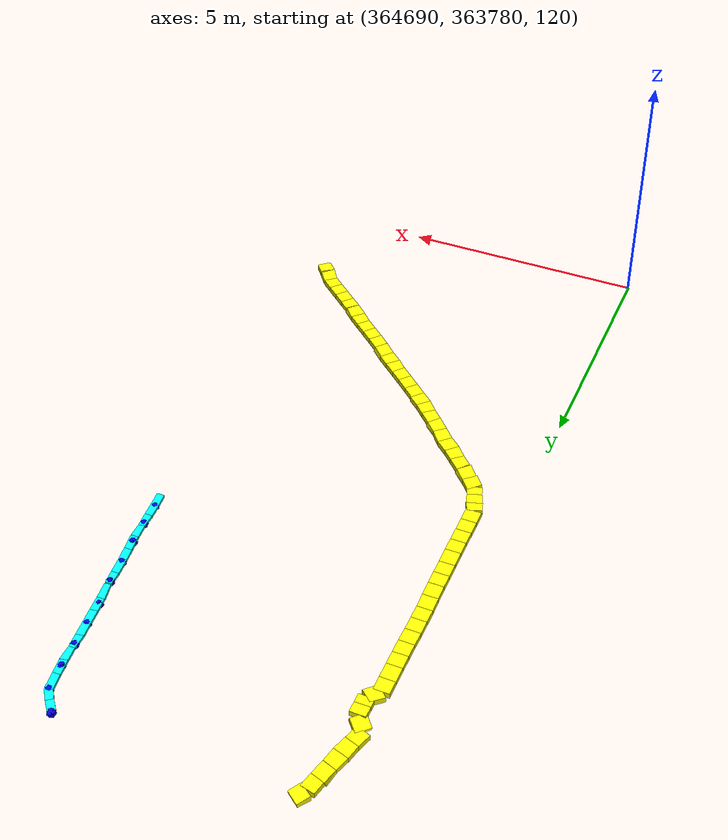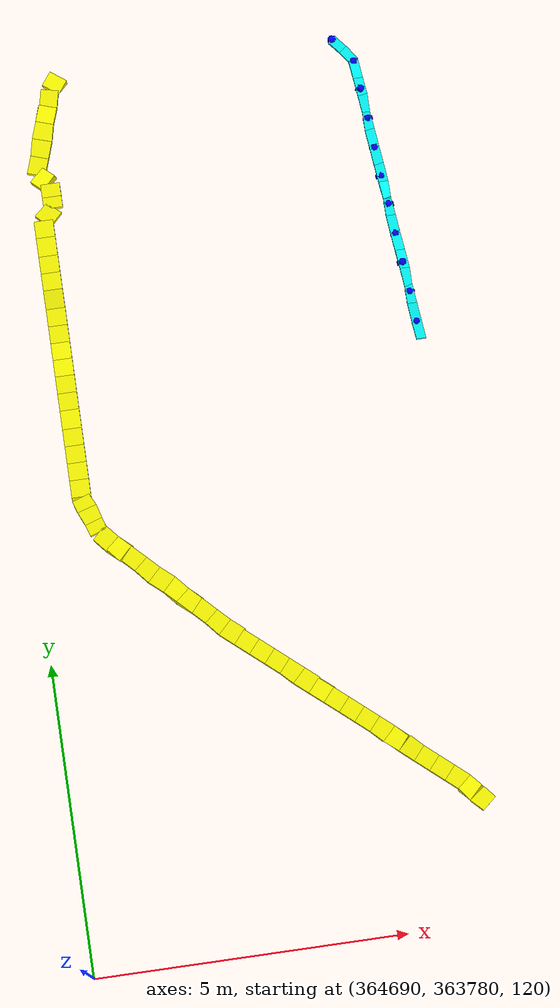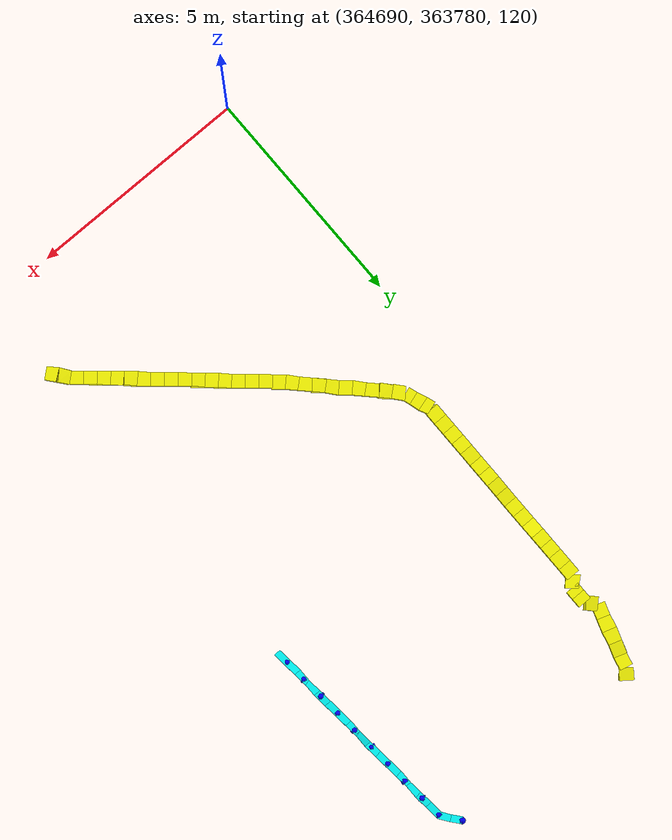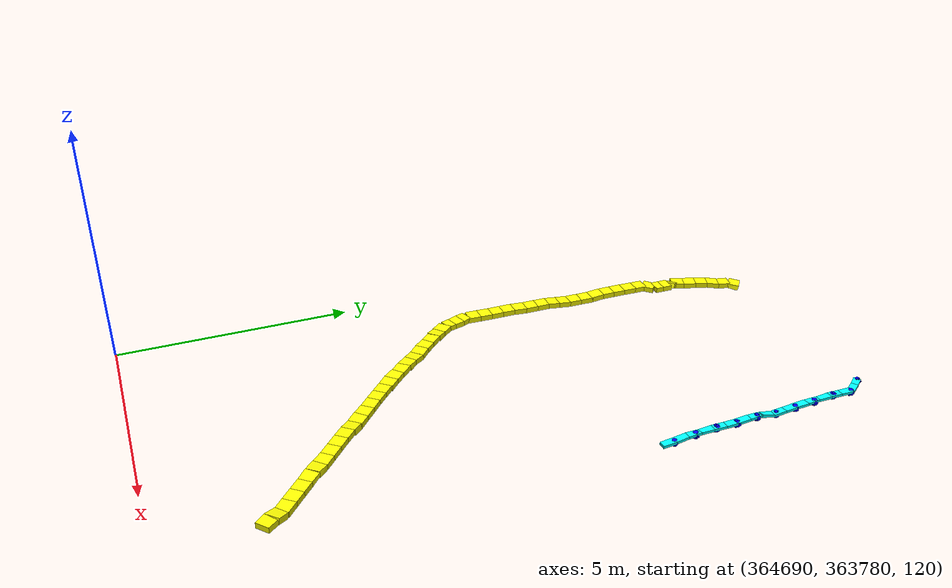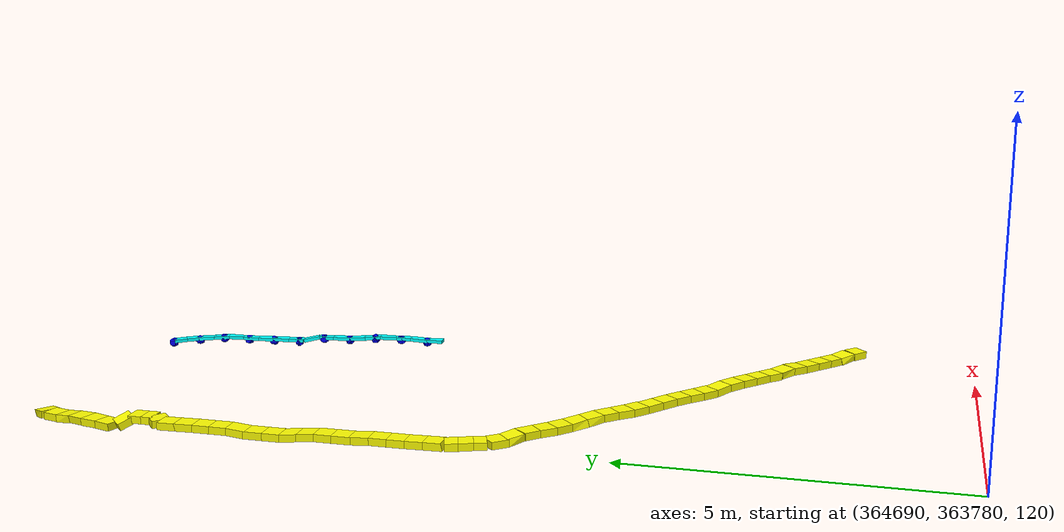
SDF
<sdf version="1.5">
 <world name="default">
  <include><uri>model://sun</uri></include>
  <model name="road_segment_32">
   <static>true</static>
   <pose>364696.49 363781.93999999994 119.97499999990542 0 0.03839219072589787 2.2655346028484664</pose>
   <link name="link">
    <collision name="collision">
     <geometry><box><size>0.26053364038696225 0.3 0.12</size></box></geometry>
     <surface><friction><ode><mu>0.2</mu><mu2>0.2</mu2></ode></friction></surface>
    </collision>
    <visual name="visual">
     <geometry><box><size>0.26053364038696225 0.3 0.12</size></box></geometry>
     <material><ambient>1 1 0 1</ambient><diffuse>1 1 0 1</diffuse><emissive>1 1 0 1</emissive></material>
    </visual>
   </link>
  </model>
  <model name="road_segment_33">
   <static>true</static>
   <pose>364696.32333333336 363782.14 119.94499999990542 0 0.1897449038507924 2.2655346030202264</pose>
   <link name="link">
    <collision name="collision">
     <geometry><box><size>0.26509956199508167 0.3 0.12</size></box></geometry>
     <surface><friction><ode><mu>0.02</mu><mu2>0.02</mu2></ode></friction></surface>
    </collision>
    <visual name="visual">
     <geometry><box><size>0.26509956199508167 0.3 0.12</size></box></geometry>
     <material><ambient>1 1 0 1</ambient><diffuse>1 1 0 1</diffuse><emissive>1 1 0 1</emissive></material>
    </visual>
   </link>
  </model>
  <model name="road_segment_34">
   <static>true</static>
   <pose>364696.1333333333 363782.3333333333 119.92 0 -0.0 2.4227626539874856</pose>
   <link name="link">
    <collision name="collision">
     <geometry><box><size>0.2834705549818721 0.3 0.12</size></box></geometry>
     <surface><friction><ode><mu>0.02</mu><mu2>0.02</mu2></ode></friction></surface>
    </collision>
    <visual name="visual">
     <geometry><box><size>0.2834705549818721 0.3 0.12</size></box></geometry>
     <material><ambient>1 1 0 1</ambient><diffuse>1 1 0 1</diffuse><emissive>1 1 0 1</emissive></material>
    </visual>
   </link>
  </model>
  <model name="road_segment_35">
   <static>true</static>
   <pose>364695.92 363782.52 119.92 0 -0.0 2.4227626539681686</pose>
   <link name="link">
    <collision name="collision">
     <geometry><box><size>0.28347055506400787 0.3 0.12</size></box></geometry>
     <surface><friction><ode><mu>0.02</mu><mu2>0.02</mu2></ode></friction></surface>
    </collision>
    <visual name="visual">
     <geometry><box><size>0.28347055506400787 0.3 0.12</size></box></geometry>
     <material><ambient>1 1 0 1</ambient><diffuse>1 1 0 1</diffuse><emissive>1 1 0 1</emissive></material>
    </visual>
   </link>
  </model>
  <model name="road_segment_36">
   <static>true</static>
   <pose>364695.70666666667 363782.70666666667 119.92 0 -0.0 2.4227626539874856</pose>
   <link name="link">
    <collision name="collision">
     <geometry><box><size>0.2834705549818721 0.3 0.12</size></box></geometry>
     <surface><friction><ode><mu>0.02</mu><mu2>0.02</mu2></ode></friction></surface>
    </collision>
    <visual name="visual">
     <geometry><box><size>0.2834705549818721 0.3 0.12</size></box></geometry>
     <material><ambient>1 1 0 1</ambient><diffuse>1 1 0 1</diffuse><emissive>1 1 0 1</emissive></material>
    </visual>
   </link>
  </model>
  <model name="road_segment_37">
   <static>true</static>
   <pose>364695.4933333333 363782.8933333333 119.92646666657551 0 -0.045593342754924174 2.4227626539874856</pose>
   <link name="link">
    <collision name="collision">
     <geometry><box><size>0.2837654430125804 0.3 0.12</size></box></geometry>
     <surface><friction><ode><mu>0.02</mu><mu2>0.02</mu2></ode></friction></surface>
    </collision>
    <visual name="visual">
     <geometry><box><size>0.2837654430125804 0.3 0.12</size></box></geometry>
     <material><ambient>1 1 0 1</ambient><diffuse>1 1 0 1</diffuse><emissive>1 1 0 1</emissive></material>
    </visual>
   </link>
  </model>
  <model name="road_segment_38">
   <static>true</static>
   <pose>364695.28 363783.07999999996 119.91646666657552 0 0.11566050803793583 2.422762653832952</pose>
   <link name="link">
    <collision name="collision">
     <geometry><box><size>0.28537722403145044 0.3 0.12</size></box></geometry>
     <surface><friction><ode><mu>0.02</mu><mu2>0.02</mu2></ode></friction></surface>
    </collision>
    <visual name="visual">
     <geometry><box><size>0.28537722403145044 0.3 0.12</size></box></geometry>
     <material><ambient>1 1 0 1</ambient><diffuse>1 1 0 1</diffuse><emissive>1 1 0 1</emissive></material>
    </visual>
   </link>
  </model>
  <model name="road_segment_39">
   <static>true</static>
   <pose>364695.06666666665 363783.26666666666 119.90000000000002 0 -0.0 2.4227626541227023</pose>
   <link name="link">
    <collision name="collision">
     <geometry><box><size>0.28347055502567786 0.3 0.12</size></box></geometry>
     <surface><friction><ode><mu>0.02</mu><mu2>0.02</mu2></ode></friction></surface>
    </collision>
    <visual name="visual">
     <geometry><box><size>0.28347055502567786 0.3 0.12</size></box></geometry>
     <material><ambient>1 1 0 1</ambient><diffuse>1 1 0 1</diffuse><emissive>1 1 0 1</emissive></material>
    </visual>
   </link>
  </model>
  <model name="road_segment_40">
   <static>true</static>
   <pose>364694.8533333333 363783.4533333333 119.90000000000002 0 5.013167845990489e-14 2.4227626539874856</pose>
   <link name="link">
    <collision name="collision">
     <geometry><box><size>0.2834705549818721 0.3 0.12</size></box></geometry>
     <surface><friction><ode><mu>0.02</mu><mu2>0.02</mu2></ode></friction></surface>
    </collision>
    <visual name="visual">
     <geometry><box><size>0.2834705549818721 0.3 0.12</size></box></geometry>
     <material><ambient>1 1 0 1</ambient><diffuse>1 1 0 1</diffuse><emissive>1 1 0 1</emissive></material>
    </visual>
   </link>
  </model>
  <model name="road_segment_41">
   <static>true</static>
   <pose>364694.64 363783.64 119.9 0 -0.0 2.422762653832952</pose>
   <link name="link">
    <collision name="collision">
     <geometry><box><size>0.28347055502020213 0.3 0.12</size></box></geometry>
     <surface><friction><ode><mu>0.02</mu><mu2>0.02</mu2></ode></friction></surface>
    </collision>
    <visual name="visual">
     <geometry><box><size>0.28347055502020213 0.3 0.12</size></box></geometry>
     <material><ambient>1 1 0 1</ambient><diffuse>1 1 0 1</diffuse><emissive>1 1 0 1</emissive></material>
    </visual>
   </link>
  </model>
  <model name="road_segment_42">
   <static>true</static>
   <pose>364694.42666666664 363783.82666666666 119.89480000004797 0 0.036671665863208906 2.4227626539874856</pose>
   <link name="link">
    <collision name="collision">
     <geometry><box><size>0.28366126901594296 0.3 0.12</size></box></geometry>
     <surface><friction><ode><mu>0.02</mu><mu2>0.02</mu2></ode></friction></surface>
    </collision>
    <visual name="visual">
     <geometry><box><size>0.28366126901594296 0.3 0.12</size></box></geometry>
     <material><ambient>1 1 0 1</ambient><diffuse>1 1 0 1</diffuse><emissive>1 1 0 1</emissive></material>
    </visual>
   </link>
  </model>
  <model name="road_segment_43">
   <static>true</static>
   <pose>364694.2133333333 363784.0133333333 119.86980000004796 0 0.13879880210410134 2.4227626541227023</pose>
   <link name="link">
    <collision name="collision">
     <geometry><box><size>0.28622319188732037 0.3 0.12</size></box></geometry>
     <surface><friction><ode><mu>0.02</mu><mu2>0.02</mu2></ode></friction></surface>
    </collision>
    <visual name="visual">
     <geometry><box><size>0.28622319188732037 0.3 0.12</size></box></geometry>
     <material><ambient>1 1 0 1</ambient><diffuse>1 1 0 1</diffuse><emissive>1 1 0 1</emissive></material>
    </visual>
   </link>
  </model>
  <model name="road_segment_44">
   <static>true</static>
   <pose>364694.0 363784.19999999995 119.84999999999998 0 -0.0 2.422762653832952</pose>
   <link name="link">
    <collision name="collision">
     <geometry><box><size>0.28347055502020213 0.3 0.12</size></box></geometry>
     <surface><friction><ode><mu>0.02</mu><mu2>0.02</mu2></ode></friction></surface>
    </collision>
    <visual name="visual">
     <geometry><box><size>0.28347055502020213 0.3 0.12</size></box></geometry>
     <material><ambient>1 1 0 1</ambient><diffuse>1 1 0 1</diffuse><emissive>1 1 0 1</emissive></material>
    </visual>
   </link>
  </model>
  <model name="road_segment_45">
   <static>true</static>
   <pose>364693.7866666666 363784.38666666666 119.84999999999998 0 -5.013167845990489e-14 2.4227626539874856</pose>
   <link name="link">
    <collision name="collision">
     <geometry><box><size>0.2834705549818721 0.3 0.12</size></box></geometry>
     <surface><friction><ode><mu>0.02</mu><mu2>0.02</mu2></ode></friction></surface>
    </collision>
    <visual name="visual">
     <geometry><box><size>0.2834705549818721 0.3 0.12</size></box></geometry>
     <material><ambient>1 1 0 1</ambient><diffuse>1 1 0 1</diffuse><emissive>1 1 0 1</emissive></material>
    </visual>
   </link>
  </model>
  <model name="road_segment_46">
   <static>true</static>
   <pose>364693.57333333336 363784.5733333333 119.84999999999998 0 5.013167845990489e-14 2.4227626539874856</pose>
   <link name="link">
    <collision name="collision">
     <geometry><box><size>0.2834705549818721 0.3 0.12</size></box></geometry>
     <surface><friction><ode><mu>0.02</mu><mu2>0.02</mu2></ode></friction></surface>
    </collision>
    <visual name="visual">
     <geometry><box><size>0.2834705549818721 0.3 0.12</size></box></geometry>
     <material><ambient>1 1 0 1</ambient><diffuse>1 1 0 1</diffuse><emissive>1 1 0 1</emissive></material>
    </visual>
   </link>
  </model>
  <model name="road_segment_47">
   <static>true</static>
   <pose>364693.36 363784.76 119.84504444445754 0 0.03494922233193854 2.4227626539681686</pose>
   <link name="link">
    <collision name="collision">
     <geometry><box><size>0.28364376550742865 0.3 0.12</size></box></geometry>
     <surface><friction><ode><mu>0.02</mu><mu2>0.02</mu2></ode></friction></surface>
    </collision>
    <visual name="visual">
     <geometry><box><size>0.28364376550742865 0.3 0.12</size></box></geometry>
     <material><ambient>1 1 0 1</ambient><diffuse>1 1 0 1</diffuse><emissive>1 1 0 1</emissive></material>
    </visual>
   </link>
  </model>
  <model name="road_segment_48">
   <static>true</static>
   <pose>364693.1466666666 363784.94666666666 119.83504444448958 0 0.0355755900313354 2.4227626539874856</pose>
   <link name="link">
    <collision name="collision">
     <geometry><box><size>0.28365003299837666 0.3 0.12</size></box></geometry>
     <surface><friction><ode><mu>0.02</mu><mu2>0.02</mu2></ode></friction></surface>
    </collision>
    <visual name="visual">
     <geometry><box><size>0.28365003299837666 0.3 0.12</size></box></geometry>
     <material><ambient>1 1 0 1</ambient><diffuse>1 1 0 1</diffuse><emissive>1 1 0 1</emissive></material>
    </visual>
   </link>
  </model>
  <model name="road_segment_49">
   <static>true</static>
   <pose>364692.93999999994 363785.14 119.83000000003202 0 2.26394771789353e-10 2.356194490192345</pose>
   <link name="link">
    <collision name="collision">
     <geometry><box><size>0.2828427124910826 0.3 0.12</size></box></geometry>
     <surface><friction><ode><mu>0.02</mu><mu2>0.02</mu2></ode></friction></surface>
    </collision>
    <visual name="visual">
     <geometry><box><size>0.2828427124910826 0.3 0.12</size></box></geometry>
     <material><ambient>1 1 0 1</ambient><diffuse>1 1 0 1</diffuse><emissive>1 1 0 1</emissive></material>
    </visual>
   </link>
  </model>
  <model name="road_segment_50">
   <static>true</static>
   <pose>364692.74 363785.33999999997 119.83 0 -0.0 2.356194490192345</pose>
   <link name="link">
    <collision name="collision">
     <geometry><box><size>0.2828427124910826 0.3 0.12</size></box></geometry>
     <surface><friction><ode><mu>0.02</mu><mu2>0.02</mu2></ode></friction></surface>
    </collision>
    <visual name="visual">
     <geometry><box><size>0.2828427124910826 0.3 0.12</size></box></geometry>
     <material><ambient>1 1 0 1</ambient><diffuse>1 1 0 1</diffuse><emissive>1 1 0 1</emissive></material>
    </visual>
   </link>
  </model>
  <model name="road_segment_51">
   <static>true</static>
   <pose>364692.54 363785.54 119.82999999997962 0 1.440465625630227e-10 2.356194490192345</pose>
   <link name="link">
    <collision name="collision">
     <geometry><box><size>0.2828427124087646 0.3 0.12</size></box></geometry>
     <surface><friction><ode><mu>0.02</mu><mu2>0.02</mu2></ode></friction></surface>
    </collision>
    <visual name="visual">
     <geometry><box><size>0.2828427124087646 0.3 0.12</size></box></geometry>
     <material><ambient>1 1 0 1</ambient><diffuse>1 1 0 1</diffuse><emissive>1 1 0 1</emissive></material>
    </visual>
   </link>
  </model>
  <model name="road_segment_52">
   <static>true</static>
   <pose>364692.33999999997 363785.74 119.81999999997963 0 0.07059317913660804 2.356194490192345</pose>
   <link name="link">
    <collision name="collision">
     <geometry><box><size>0.2835489375887051 0.3 0.12</size></box></geometry>
     <surface><friction><ode><mu>0.02</mu><mu2>0.02</mu2></ode></friction></surface>
    </collision>
    <visual name="visual">
     <geometry><box><size>0.2835489375887051 0.3 0.12</size></box></geometry>
     <material><ambient>1 1 0 1</ambient><diffuse>1 1 0 1</diffuse><emissive>1 1 0 1</emissive></material>
    </visual>
   </link>
  </model>
  <model name="road_segment_53">
   <static>true</static>
   <pose>364692.14 363785.93999999994 119.79500000010042 0 0.10567093231423799 2.356194490192345</pose>
   <link name="link">
    <collision name="collision">
     <geometry><box><size>0.28442925306174904 0.3 0.12</size></box></geometry>
     <surface><friction><ode><mu>0.02</mu><mu2>0.02</mu2></ode></friction></surface>
    </collision>
    <visual name="visual">
     <geometry><box><size>0.28442925306174904 0.3 0.12</size></box></geometry>
     <material><ambient>1 1 0 1</ambient><diffuse>1 1 0 1</diffuse><emissive>1 1 0 1</emissive></material>
    </visual>
   </link>
  </model>
  <model name="road_segment_54">
   <static>true</static>
   <pose>364691.93999999994 363786.14 119.7800000001004 0 7.099832490358071e-10 2.356194490192345</pose>
   <link name="link">
    <collision name="collision">
     <geometry><box><size>0.2828427124910826 0.3 0.12</size></box></geometry>
     <surface><friction><ode><mu>0.02</mu><mu2>0.02</mu2></ode></friction></surface>
    </collision>
    <visual name="visual">
     <geometry><box><size>0.2828427124910826 0.3 0.12</size></box></geometry>
     <material><ambient>1 1 0 1</ambient><diffuse>1 1 0 1</diffuse><emissive>1 1 0 1</emissive></material>
    </visual>
   </link>
  </model>
  <model name="road_segment_55">
   <static>true</static>
   <pose>364691.74 363786.33999999997 119.78 0 -0.0 2.356194490192345</pose>
   <link name="link">
    <collision name="collision">
     <geometry><box><size>0.2828427124910826 0.3 0.12</size></box></geometry>
     <surface><friction><ode><mu>0.02</mu><mu2>0.02</mu2></ode></friction></surface>
    </collision>
    <visual name="visual">
     <geometry><box><size>0.2828427124910826 0.3 0.12</size></box></geometry>
     <material><ambient>1 1 0 1</ambient><diffuse>1 1 0 1</diffuse><emissive>1 1 0 1</emissive></material>
    </visual>
   </link>
  </model>
  <model name="road_segment_56">
   <static>true</static>
   <pose>364691.54 363786.54 119.77999999996507 0 2.469943849179699e-10 2.356194490192345</pose>
   <link name="link">
    <collision name="collision">
     <geometry><box><size>0.2828427124087646 0.3 0.12</size></box></geometry>
     <surface><friction><ode><mu>0.02</mu><mu2>0.02</mu2></ode></friction></surface>
    </collision>
    <visual name="visual">
     <geometry><box><size>0.2828427124087646 0.3 0.12</size></box></geometry>
     <material><ambient>1 1 0 1</ambient><diffuse>1 1 0 1</diffuse><emissive>1 1 0 1</emissive></material>
    </visual>
   </link>
  </model>
  <model name="road_segment_57">
   <static>true</static>
   <pose>364691.33999999997 363786.74 119.75999999996507 0 0.14048970150332027 2.356194490192345</pose>
   <link name="link">
    <collision name="collision">
     <geometry><box><size>0.2856571371482338 0.3 0.12</size></box></geometry>
     <surface><friction><ode><mu>0.02</mu><mu2>0.02</mu2></ode></friction></surface>
    </collision>
    <visual name="visual">
     <geometry><box><size>0.2856571371482338 0.3 0.12</size></box></geometry>
     <material><ambient>1 1 0 1</ambient><diffuse>1 1 0 1</diffuse><emissive>1 1 0 1</emissive></material>
    </visual>
   </link>
  </model>
  <model name="road_segment_58">
   <static>true</static>
   <pose>364691.14 363786.93999999994 119.74 0 -0.0 2.356194490192345</pose>
   <link name="link">
    <collision name="collision">
     <geometry><box><size>0.2828427124910826 0.3 0.12</size></box></geometry>
     <surface><friction><ode><mu>0.02</mu><mu2>0.02</mu2></ode></friction></surface>
    </collision>
    <visual name="visual">
     <geometry><box><size>0.2828427124910826 0.3 0.12</size></box></geometry>
     <material><ambient>1 1 0 1</ambient><diffuse>1 1 0 1</diffuse><emissive>1 1 0 1</emissive></material>
    </visual>
   </link>
  </model>
  <model name="road_segment_59">
   <static>true</static>
   <pose>364691.00666666665 363787.14 119.74 0 -0.0 1.8925468811042274</pose>
   <link name="link">
    <collision name="collision">
     <geometry><box><size>0.21081851068402757 0.3 0.12</size></box></geometry>
     <surface><friction><ode><mu>0.02</mu><mu2>0.02</mu2></ode></friction></surface>
    </collision>
    <visual name="visual">
     <geometry><box><size>0.21081851068402757 0.3 0.12</size></box></geometry>
     <material><ambient>1 1 0 1</ambient><diffuse>1 1 0 1</diffuse><emissive>1 1 0 1</emissive></material>
    </visual>
   </link>
  </model>
  <model name="road_segment_60">
   <static>true</static>
   <pose>364690.94 363787.33999999997 119.74 0 -0.0 1.8925468811042274</pose>
   <link name="link">
    <collision name="collision">
     <geometry><box><size>0.21081851068402757 0.3 0.12</size></box></geometry>
     <surface><friction><ode><mu>0.1</mu><mu2>0.1</mu2></ode></friction></surface>
    </collision>
    <visual name="visual">
     <geometry><box><size>0.21081851068402757 0.3 0.12</size></box></geometry>
     <material><ambient>1 1 0 1</ambient><diffuse>1 1 0 1</diffuse><emissive>1 1 0 1</emissive></material>
    </visual>
   </link>
  </model>
  <model name="road_segment_61">
   <static>true</static>
   <pose>364690.87333333335 363787.54000000004 119.74 0 -0.0 1.8925468811042274</pose>
   <link name="link">
    <collision name="collision">
     <geometry><box><size>0.21081851068402757 0.3 0.12</size></box></geometry>
     <surface><friction><ode><mu>0.1</mu><mu2>0.1</mu2></ode></friction></surface>
    </collision>
    <visual name="visual">
     <geometry><box><size>0.21081851068402757 0.3 0.12</size></box></geometry>
     <material><ambient>1 1 0 1</ambient><diffuse>1 1 0 1</diffuse><emissive>1 1 0 1</emissive></material>
    </visual>
   </link>
  </model>
  <model name="road_segment_62">
   <static>true</static>
   <pose>364690.84 363787.78375 119.73781250003591 0 0.015216216593584396 1.5707963267948966</pose>
   <link name="link">
    <collision name="collision">
     <geometry><box><size>0.2875332860922082 0.3 0.12</size></box></geometry>
     <surface><friction><ode><mu>0.2</mu><mu2>0.2</mu2></ode></friction></surface>
    </collision>
    <visual name="visual">
     <geometry><box><size>0.2875332860922082 0.3 0.12</size></box></geometry>
     <material><ambient>1 1 0 1</ambient><diffuse>1 1 0 1</diffuse><emissive>1 1 0 1</emissive></material>
    </visual>
   </link>
  </model>
  <model name="road_segment_63">
   <static>true</static>
   <pose>364690.84 363788.07125000004 119.73281250003592 0 0.019562721704971604 1.5707963267948966</pose>
   <link name="link">
    <collision name="collision">
     <geometry><box><size>0.2875550219451744 0.3 0.12</size></box></geometry>
     <surface><friction><ode><mu>0.2</mu><mu2>0.2</mu2></ode></friction></surface>
    </collision>
    <visual name="visual">
     <geometry><box><size>0.2875550219451744 0.3 0.12</size></box></geometry>
     <material><ambient>1 1 0 1</ambient><diffuse>1 1 0 1</diffuse><emissive>1 1 0 1</emissive></material>
    </visual>
   </link>
  </model>
  <model name="road_segment_64">
   <static>true</static>
   <pose>364690.84 363788.35875 119.73 0 -0.0 1.5707963267948966</pose>
   <link name="link">
    <collision name="collision">
     <geometry><box><size>0.28749999997671694 0.3 0.12</size></box></geometry>
     <surface><friction><ode><mu>0.2</mu><mu2>0.2</mu2></ode></friction></surface>
    </collision>
    <visual name="visual">
     <geometry><box><size>0.28749999997671694 0.3 0.12</size></box></geometry>
     <material><ambient>1 1 0 1</ambient><diffuse>1 1 0 1</diffuse><emissive>1 1 0 1</emissive></material>
    </visual>
   </link>
  </model>
  <model name="road_segment_65">
   <static>true</static>
   <pose>364690.84 363788.64625 119.73 0 -0.0 1.5707963267948966</pose>
   <link name="link">
    <collision name="collision">
     <geometry><box><size>0.2875000000349246 0.3 0.12</size></box></geometry>
     <surface><friction><ode><mu>0.2</mu><mu2>0.2</mu2></ode></friction></surface>
    </collision>
    <visual name="visual">
     <geometry><box><size>0.2875000000349246 0.3 0.12</size></box></geometry>
     <material><ambient>1 1 0 1</ambient><diffuse>1 1 0 1</diffuse><emissive>1 1 0 1</emissive></material>
    </visual>
   </link>
  </model>
  <model name="road_segment_66">
   <static>true</static>
   <pose>364690.84 363788.93375 119.72 0 0.06945332600096411 1.5707963267948966</pose>
   <link name="link">
    <collision name="collision">
     <geometry><box><size>0.2881948125602067 0.3 0.12</size></box></geometry>
     <surface><friction><ode><mu>0.2</mu><mu2>0.2</mu2></ode></friction></surface>
    </collision>
    <visual name="visual">
     <geometry><box><size>0.2881948125602067 0.3 0.12</size></box></geometry>
     <material><ambient>1 1 0 1</ambient><diffuse>1 1 0 1</diffuse><emissive>1 1 0 1</emissive></material>
    </visual>
   </link>
  </model>
  <model name="road_segment_67">
   <static>true</static>
   <pose>364690.84 363789.22125 119.71 0 -0.0 1.5707963267948966</pose>
   <link name="link">
    <collision name="collision">
     <geometry><box><size>0.28749999997671694 0.3 0.12</size></box></geometry>
     <surface><friction><ode><mu>0.2</mu><mu2>0.2</mu2></ode></friction></surface>
    </collision>
    <visual name="visual">
     <geometry><box><size>0.28749999997671694 0.3 0.12</size></box></geometry>
     <material><ambient>1 1 0 1</ambient><diffuse>1 1 0 1</diffuse><emissive>1 1 0 1</emissive></material>
    </visual>
   </link>
  </model>
  <model name="road_segment_68">
   <static>true</static>
   <pose>364690.84 363789.50875000004 119.71 0 -0.0 1.5707963267948966</pose>
   <link name="link">
    <collision name="collision">
     <geometry><box><size>0.2875000000349246 0.3 0.12</size></box></geometry>
     <surface><friction><ode><mu>0.2</mu><mu2>0.2</mu2></ode></friction></surface>
    </collision>
    <visual name="visual">
     <geometry><box><size>0.2875000000349246 0.3 0.12</size></box></geometry>
     <material><ambient>1 1 0 1</ambient><diffuse>1 1 0 1</diffuse><emissive>1 1 0 1</emissive></material>
    </visual>
   </link>
  </model>
  <model name="road_segment_69">
   <static>true</static>
   <pose>364690.84 363789.79625 119.69500000023137 0 0.10397155034075126 1.5707963267948966</pose>
   <link name="link">
    <collision name="collision">
     <geometry><box><size>0.28906097965454725 0.3 0.12</size></box></geometry>
     <surface><friction><ode><mu>0.2</mu><mu2>0.2</mu2></ode></friction></surface>
    </collision>
    <visual name="visual">
     <geometry><box><size>0.28906097965454725 0.3 0.12</size></box></geometry>
     <material><ambient>1 1 0 1</ambient><diffuse>1 1 0 1</diffuse><emissive>1 1 0 1</emissive></material>
    </visual>
   </link>
  </model>
  <model name="road_segment_70">
   <static>true</static>
   <pose>364690.84 363790.08375 119.66500000023139 0 0.10397155352524338 1.5707963267948966</pose>
   <link name="link">
    <collision name="collision">
     <geometry><box><size>0.2890609797506007 0.3 0.12</size></box></geometry>
     <surface><friction><ode><mu>0.2</mu><mu2>0.2</mu2></ode></friction></surface>
    </collision>
    <visual name="visual">
     <geometry><box><size>0.2890609797506007 0.3 0.12</size></box></geometry>
     <material><ambient>1 1 0 1</ambient><diffuse>1 1 0 1</diffuse><emissive>1 1 0 1</emissive></material>
    </visual>
   </link>
  </model>
  <model name="road_segment_71">
   <static>true</static>
   <pose>364690.84 363790.37124999997 119.65 0 -0.0 1.5707963267948966</pose>
   <link name="link">
    <collision name="collision">
     <geometry><box><size>0.2875000000349246 0.3 0.12</size></box></geometry>
     <surface><friction><ode><mu>0.2</mu><mu2>0.2</mu2></ode></friction></surface>
    </collision>
    <visual name="visual">
     <geometry><box><size>0.2875000000349246 0.3 0.12</size></box></geometry>
     <material><ambient>1 1 0 1</ambient><diffuse>1 1 0 1</diffuse><emissive>1 1 0 1</emissive></material>
    </visual>
   </link>
  </model>
  <model name="road_segment_72">
   <static>true</static>
   <pose>364690.84 363790.65875 119.65 0 -0.0 1.5707963267948966</pose>
   <link name="link">
    <collision name="collision">
     <geometry><box><size>0.28749999997671694 0.3 0.12</size></box></geometry>
     <surface><friction><ode><mu>0.2</mu><mu2>0.2</mu2></ode></friction></surface>
    </collision>
    <visual name="visual">
     <geometry><box><size>0.28749999997671694 0.3 0.12</size></box></geometry>
     <material><ambient>1 1 0 1</ambient><diffuse>1 1 0 1</diffuse><emissive>1 1 0 1</emissive></material>
    </visual>
   </link>
  </model>
  <model name="road_segment_73">
   <static>true</static>
   <pose>364690.84 363790.94625 119.665 0 -0.10397155193297287 1.5707963267948966</pose>
   <link name="link">
    <collision name="collision">
     <geometry><box><size>0.2890609797025732 0.3 0.12</size></box></geometry>
     <surface><friction><ode><mu>0.1</mu><mu2>0.1</mu2></ode></friction></surface>
    </collision>
    <visual name="visual">
     <geometry><box><size>0.2890609797025732 0.3 0.12</size></box></geometry>
     <material><ambient>1 1 0 1</ambient><diffuse>1 1 0 1</diffuse><emissive>1 1 0 1</emissive></material>
    </visual>
   </link>
  </model>
  <model name="road_segment_74">
   <static>true</static>
   <pose>364690.84 363791.23375 119.67999999999999 0 -0.0 1.5707963267948966</pose>
   <link name="link">
    <collision name="collision">
     <geometry><box><size>0.2875000000349246 0.3 0.12</size></box></geometry>
     <surface><friction><ode><mu>0.1</mu><mu2>0.1</mu2></ode></friction></surface>
    </collision>
    <visual name="visual">
     <geometry><box><size>0.2875000000349246 0.3 0.12</size></box></geometry>
     <material><ambient>1 1 0 1</ambient><diffuse>1 1 0 1</diffuse><emissive>1 1 0 1</emissive></material>
    </visual>
   </link>
  </model>
  <model name="road_segment_75">
   <static>true</static>
   <pose>364690.84 363791.52125 119.67999999999999 0 -0.0 1.5707963267948966</pose>
   <link name="link">
    <collision name="collision">
     <geometry><box><size>0.28749999997671694 0.3 0.12</size></box></geometry>
     <surface><friction><ode><mu>0.2</mu><mu2>0.2</mu2></ode></friction></surface>
    </collision>
    <visual name="visual">
     <geometry><box><size>0.28749999997671694 0.3 0.12</size></box></geometry>
     <material><ambient>1 1 0 1</ambient><diffuse>1 1 0 1</diffuse><emissive>1 1 0 1</emissive></material>
    </visual>
   </link>
  </model>
  <model name="road_segment_76">
   <static>true</static>
   <pose>364690.84 363791.80874999997 119.6771875000412 0 0.019562721168673882 1.5707963267948966</pose>
   <link name="link">
    <collision name="collision">
     <geometry><box><size>0.28755502194215715 0.3 0.12</size></box></geometry>
     <surface><friction><ode><mu>0.2</mu><mu2>0.2</mu2></ode></friction></surface>
    </collision>
    <visual name="visual">
     <geometry><box><size>0.28755502194215715 0.3 0.12</size></box></geometry>
     <material><ambient>1 1 0 1</ambient><diffuse>1 1 0 1</diffuse><emissive>1 1 0 1</emissive></material>
    </visual>
   </link>
  </model>
  <model name="road_segment_77">
   <static>true</static>
   <pose>364690.84 363792.09625 119.6721875000412 0 0.015216217129963204 1.5707963267948966</pose>
   <link name="link">
    <collision name="collision">
     <geometry><box><size>0.2875332860945551 0.3 0.12</size></box></geometry>
     <surface><friction><ode><mu>0.2</mu><mu2>0.2</mu2></ode></friction></surface>
    </collision>
    <visual name="visual">
     <geometry><box><size>0.2875332860945551 0.3 0.12</size></box></geometry>
     <material><ambient>1 1 0 1</ambient><diffuse>1 1 0 1</diffuse><emissive>1 1 0 1</emissive></material>
    </visual>
   </link>
  </model>
  <model name="road_segment_78">
   <static>true</static>
   <pose>364690.94 363792.33999999997 119.67 0 -0.0 0.7853981635429674</pose>
   <link name="link">
    <collision name="collision">
     <geometry><box><size>0.2828427124499236 0.3 0.12</size></box></geometry>
     <surface><friction><ode><mu>0.2</mu><mu2>0.2</mu2></ode></friction></surface>
    </collision>
    <visual name="visual">
     <geometry><box><size>0.2828427124499236 0.3 0.12</size></box></geometry>
     <material><ambient>1 1 0 1</ambient><diffuse>1 1 0 1</diffuse><emissive>1 1 0 1</emissive></material>
    </visual>
   </link>
  </model>
  <model name="road_segment_79">
   <static>true</static>
   <pose>364691.04 363792.54000000004 119.67 0 -0.0 1.5707963267948966</pose>
   <link name="link">
    <collision name="collision">
     <geometry><box><size>0.20000000001164153 0.3 0.12</size></box></geometry>
     <surface><friction><ode><mu>0.1</mu><mu2>0.1</mu2></ode></friction></surface>
    </collision>
    <visual name="visual">
     <geometry><box><size>0.20000000001164153 0.3 0.12</size></box></geometry>
     <material><ambient>1 1 0 1</ambient><diffuse>1 1 0 1</diffuse><emissive>1 1 0 1</emissive></material>
    </visual>
   </link>
  </model>
  <model name="road_segment_80">
   <static>true</static>
   <pose>364691.04 363792.74 119.67 0 -0.0 1.5707963267948966</pose>
   <link name="link">
    <collision name="collision">
     <geometry><box><size>0.20000000001164153 0.3 0.12</size></box></geometry>
     <surface><friction><ode><mu>0.1</mu><mu2>0.1</mu2></ode></friction></surface>
    </collision>
    <visual name="visual">
     <geometry><box><size>0.20000000001164153 0.3 0.12</size></box></geometry>
     <material><ambient>1 1 0 1</ambient><diffuse>1 1 0 1</diffuse><emissive>1 1 0 1</emissive></material>
    </visual>
   </link>
  </model>
  <model name="road_segment_81">
   <static>true</static>
   <pose>364690.94 363792.94 119.62000000043655 0 0.33983690678338485 2.356194490192345</pose>
   <link name="link">
    <collision name="collision">
     <geometry><box><size>0.2999999996468764 0.3 0.12</size></box></geometry>
     <surface><friction><ode><mu>0.1</mu><mu2>0.1</mu2></ode></friction></surface>
    </collision>
    <visual name="visual">
     <geometry><box><size>0.2999999996468764 0.3 0.12</size></box></geometry>
     <material><ambient>1 1 0 1</ambient><diffuse>1 1 0 1</diffuse><emissive>1 1 0 1</emissive></material>
    </visual>
   </link>
  </model>
  <model name="road_segment_82">
   <static>true</static>
   <pose>364690.88 363793.18 119.57000000043654 0 2.998337723405718e-09 1.2924966677623289</pose>
   <link name="link">
    <collision name="collision">
     <geometry><box><size>0.29120439560256284 0.3 0.12</size></box></geometry>
     <surface><friction><ode><mu>0.02</mu><mu2>0.02</mu2></ode></friction></surface>
    </collision>
    <visual name="visual">
     <geometry><box><size>0.29120439560256284 0.3 0.12</size></box></geometry>
     <material><ambient>1 1 0 1</ambient><diffuse>1 1 0 1</diffuse><emissive>1 1 0 1</emissive></material>
    </visual>
   </link>
  </model>
  <model name="road_segment_83">
   <static>true</static>
   <pose>364690.96 363793.45999999996 119.56999999999998 0 -4.880027545363245e-14 1.292496667899611</pose>
   <link name="link">
    <collision name="collision">
     <geometry><box><size>0.2912043955306039 0.3 0.12</size></box></geometry>
     <surface><friction><ode><mu>0.02</mu><mu2>0.02</mu2></ode></friction></surface>
    </collision>
    <visual name="visual">
     <geometry><box><size>0.2912043955306039 0.3 0.12</size></box></geometry>
     <material><ambient>1 1 0 1</ambient><diffuse>1 1 0 1</diffuse><emissive>1 1 0 1</emissive></material>
    </visual>
   </link>
  </model>
  <model name="road_segment_84">
   <static>true</static>
   <pose>364691.04000000004 363793.74 119.56500000022119 0 0.034326650525818535 1.2924966677623289</pose>
   <link name="link">
    <collision name="collision">
     <geometry><box><size>0.29137604570281056 0.3 0.12</size></box></geometry>
     <surface><friction><ode><mu>0.02</mu><mu2>0.02</mu2></ode></friction></surface>
    </collision>
    <visual name="visual">
     <geometry><box><size>0.29137604570281056 0.3 0.12</size></box></geometry>
     <material><ambient>1 1 0 1</ambient><diffuse>1 1 0 1</diffuse><emissive>1 1 0 1</emissive></material>
    </visual>
   </link>
  </model>
  <model name="road_segment_85">
   <static>true</static>
   <pose>364691.12 363794.02 119.54000000022118 0 0.13650631267210253 1.292496667899611</pose>
   <link name="link">
    <collision name="collision">
     <geometry><box><size>0.2939387691539421 0.3 0.12</size></box></geometry>
     <surface><friction><ode><mu>0.02</mu><mu2>0.02</mu2></ode></friction></surface>
    </collision>
    <visual name="visual">
     <geometry><box><size>0.2939387691539421 0.3 0.12</size></box></geometry>
     <material><ambient>1 1 0 1</ambient><diffuse>1 1 0 1</diffuse><emissive>1 1 0 1</emissive></material>
    </visual>
   </link>
  </model>
  <model name="road_segment_86">
   <static>true</static>
   <pose>364691.19999999995 363794.3 119.52 0 -0.0 1.2924966677623289</pose>
   <link name="link">
    <collision name="collision">
     <geometry><box><size>0.29120439560256284 0.3 0.12</size></box></geometry>
     <surface><friction><ode><mu>0.02</mu><mu2>0.02</mu2></ode></friction></surface>
    </collision>
    <visual name="visual">
     <geometry><box><size>0.29120439560256284 0.3 0.12</size></box></geometry>
     <material><ambient>1 1 0 1</ambient><diffuse>1 1 0 1</diffuse><emissive>1 1 0 1</emissive></material>
    </visual>
   </link>
  </model>
  <model name="road_segment_87">
   <static>true</static>
   <pose>364691.32333333336 363794.54000000004 119.5033333333673 0 0.1273440268676273 0.8760580505695668</pose>
   <link name="link">
    <collision name="collision">
     <geometry><box><size>0.26246692914629144 0.3 0.12</size></box></geometry>
     <surface><friction><ode><mu>0.02</mu><mu2>0.02</mu2></ode></friction></surface>
    </collision>
    <visual name="visual">
     <geometry><box><size>0.26246692914629144 0.3 0.12</size></box></geometry>
     <material><ambient>1 1 0 1</ambient><diffuse>1 1 0 1</diffuse><emissive>1 1 0 1</emissive></material>
    </visual>
   </link>
  </model>
  <model name="normal_astar_segment_50">
   <static>true</static>
   <pose>364696.62153846154 363789.61384615384 119.62999999999998 0 4.7452575823241905e-14 1.6530843166494582</pose>
   <link name="link">
    <visual name="visual">
     <geometry><box><size>0.299474885581272 0.15 0.06</size></box></geometry>
     <material><ambient>0 1 1 1</ambient><diffuse>0 1 1 1</diffuse><emissive>0 1 1 1</emissive></material>
    </visual>
   </link>
  </model>
  <model name="normal_astar_segment_51">
   <static>true</static>
   <pose>364696.5969230769 363789.91230769234 119.63999999999999 0 -0.06668454233826208 1.65308431645575</pose>
   <link name="link">
    <visual name="visual">
     <geometry><box><size>0.3001419782220587 0.15 0.06</size></box></geometry>
     <material><ambient>0 1 1 1</ambient><diffuse>0 1 1 1</diffuse><emissive>0 1 1 1</emissive></material>
    </visual>
   </link>
  </model>
  <model name="normal_astar_segment_52">
   <static>true</static>
   <pose>364696.5723076923 363790.21076923073 119.64999999999999 0 -0.0 1.6530843166494582</pose>
   <link name="link">
    <visual name="visual">
     <geometry><box><size>0.299474885581272 0.15 0.06</size></box></geometry>
     <material><ambient>0 1 1 1</ambient><diffuse>0 1 1 1</diffuse><emissive>0 1 1 1</emissive></material>
    </visual>
   </link>
  </model>
  <model name="normal_astar_segment_53">
   <static>true</static>
   <pose>364696.5476923077 363790.50923076924 119.64999999999999 0 -0.0 1.6530843166494582</pose>
   <link name="link">
    <visual name="visual">
     <geometry><box><size>0.299474885581272 0.15 0.06</size></box></geometry>
     <material><ambient>0 1 1 1</ambient><diffuse>0 1 1 1</diffuse><emissive>0 1 1 1</emissive></material>
    </visual>
   </link>
  </model>
  <model name="normal_astar_segment_54">
   <static>true</static>
   <pose>364696.5230769231 363790.8076923077 119.63538461558285 0 0.0972985360354562 1.6530843164397742</pose>
   <link name="link">
    <visual name="visual">
     <geometry><box><size>0.30089806408888414 0.15 0.06</size></box></geometry>
     <material><ambient>0 1 1 1</ambient><diffuse>0 1 1 1</diffuse><emissive>0 1 1 1</emissive></material>
    </visual>
   </link>
  </model>
  <model name="normal_astar_segment_55">
   <static>true</static>
   <pose>364696.49846153846 363791.10615384614 119.61038461558287 0 0.06924129483992399 1.6530843166494582</pose>
   <link name="link">
    <visual name="visual">
     <geometry><box><size>0.3001942172279987 0.15 0.06</size></box></geometry>
     <material><ambient>0 1 1 1</ambient><diffuse>0 1 1 1</diffuse><emissive>0 1 1 1</emissive></material>
    </visual>
   </link>
  </model>
  <model name="normal_astar_segment_56">
   <static>true</static>
   <pose>364696.4738461538 363791.40461538464 119.60000000000001 0 4.7452575824000007e-14 1.65308431645575</pose>
   <link name="link">
    <visual name="visual">
     <geometry><box><size>0.2994748855764876 0.15 0.06</size></box></geometry>
     <material><ambient>0 1 1 1</ambient><diffuse>0 1 1 1</diffuse><emissive>0 1 1 1</emissive></material>
    </visual>
   </link>
  </model>
  <model name="normal_astar_segment_57">
   <static>true</static>
   <pose>364696.44923076924 363791.70307692303 119.5976828406036 0 0.015473581065976984 1.6530843166494582</pose>
   <link name="link">
    <visual name="visual">
     <geometry><box><size>0.29951074105044917 0.15 0.06</size></box></geometry>
     <material><ambient>0 1 1 1</ambient><diffuse>0 1 1 1</diffuse><emissive>0 1 1 1</emissive></material>
    </visual>
   </link>
  </model>
  <model name="normal_astar_segment_58">
   <static>true</static>
   <pose>364696.4246153846 363792.00153846154 119.55768284060359 0 0.24653987566589783 1.6530843166494582</pose>
   <link name="link">
    <visual name="visual">
     <geometry><box><size>0.30881255317383327 0.15 0.06</size></box></geometry>
     <material><ambient>0 1 1 1</ambient><diffuse>0 1 1 1</diffuse><emissive>0 1 1 1</emissive></material>
    </visual>
   </link>
  </model>
  <model name="normal_astar_segment_59">
   <static>true</static>
   <pose>364696.4 363792.3 119.52 0 -0.0 1.6530843164397742</pose>
   <link name="link">
    <visual name="visual">
     <geometry><box><size>0.2994748856344983 0.15 0.06</size></box></geometry>
     <material><ambient>0 1 1 1</ambient><diffuse>0 1 1 1</diffuse><emissive>0 1 1 1</emissive></material>
    </visual>
   </link>
  </model>
  <model name="normal_astar_segment_60">
   <static>true</static>
   <pose>364696.3753846154 363792.59846153844 119.52 0 -0.0 1.6530843166494582</pose>
   <link name="link">
    <visual name="visual">
     <geometry><box><size>0.299474885581272 0.15 0.06</size></box></geometry>
     <material><ambient>0 1 1 1</ambient><diffuse>0 1 1 1</diffuse><emissive>0 1 1 1</emissive></material>
    </visual>
   </link>
  </model>
  <model name="normal_astar_segment_61">
   <static>true</static>
   <pose>364696.35076923075 363792.89692307694 119.51753846155522 0 0.01643755027496708 1.6530843166494582</pose>
   <link name="link">
    <visual name="visual">
     <geometry><box><size>0.2995153481542748 0.15 0.06</size></box></geometry>
     <material><ambient>0 1 1 1</ambient><diffuse>0 1 1 1</diffuse><emissive>0 1 1 1</emissive></material>
    </visual>
   </link>
  </model>
  <model name="normal_astar_segment_62">
   <static>true</static>
   <pose>364696.3261538461 363793.19538461533 119.5156923077249 0 -0.00410973460217001 1.65308431645575</pose>
   <link name="link">
    <visual name="visual">
     <geometry><box><size>0.299477414647491 0.15 0.06</size></box></geometry>
     <material><ambient>0 1 1 1</ambient><diffuse>0 1 1 1</diffuse><emissive>0 1 1 1</emissive></material>
    </visual>
   </link>
  </model>
  <model name="normal_astar_segment_63">
   <static>true</static>
   <pose>364696.3015384615 363793.49384615384 119.51692307695531 0 -0.004109734611035888 1.653084316633482</pose>
   <link name="link">
    <visual name="visual">
     <geometry><box><size>0.29947741471029754 0.15 0.06</size></box></geometry>
     <material><ambient>0 1 1 1</ambient><diffuse>0 1 1 1</diffuse><emissive>0 1 1 1</emissive></material>
    </visual>
   </link>
  </model>
  <model name="normal_astar_segment_64">
   <static>true</static>
   <pose>364696.27692307695 363793.79230769235 119.50354792926541 0 0.09316328728098378 1.65308431645575</pose>
   <link name="link">
    <visual name="visual">
     <geometry><box><size>0.3007792331060304 0.15 0.06</size></box></geometry>
     <material><ambient>0 1 1 1</ambient><diffuse>0 1 1 1</diffuse><emissive>0 1 1 1</emissive></material>
    </visual>
   </link>
  </model>
  <model name="normal_astar_segment_65">
   <static>true</static>
   <pose>364696.2523076923 363794.09076923074 119.4747786984798 0 0.0983787983904225 1.6530843166494582</pose>
   <link name="link">
    <visual name="visual">
     <geometry><box><size>0.3009299699414179 0.15 0.06</size></box></geometry>
     <material><ambient>0 1 1 1</ambient><diffuse>0 1 1 1</diffuse><emissive>0 1 1 1</emissive></material>
    </visual>
   </link>
  </model>
  <model name="normal_astar_segment_66">
   <static>true</static>
   <pose>364696.165 363794.33999999997 119.46 0 -0.0 2.214297435634747</pose>
   <link name="link">
    <visual name="visual">
     <geometry><box><size>0.25000000002328304 0.15 0.06</size></box></geometry>
     <material><ambient>0 1 1 1</ambient><diffuse>0 1 1 1</diffuse><emissive>0 1 1 1</emissive></material>
    </visual>
   </link>
  </model>
  <model name="normal_astar_segment_67">
   <static>true</static>
   <pose>364696.015 363794.54000000004 119.46 0 -0.0 2.214297435448483</pose>
   <link name="link">
    <visual name="visual">
     <geometry><box><size>0.24999999998835848 0.15 0.06</size></box></geometry>
     <material><ambient>0 1 1 1</ambient><diffuse>0 1 1 1</diffuse><emissive>0 1 1 1</emissive></material>
    </visual>
   </link>
  </model>
  <model name="dijkstra_marker_31">
   <static>true</static>
   <pose>364696.6092307692 363789.7630769231 119.6 0 0 0</pose>
   <link name="link">
    <visual name="visual">
     <geometry><sphere><radius>0.08</radius></sphere></geometry>
     <material><ambient>0 0 1 1</ambient><diffuse>0 0 1 1</diffuse><emissive>0 0 1 1</emissive></material>
    </visual>
   </link>
  </model>
  <model name="dijkstra_marker_32">
   <static>true</static>
   <pose>364696.5682051282 363790.2605128205 119.62 0 0 0</pose>
   <link name="link">
    <visual name="visual">
     <geometry><sphere><radius>0.08</radius></sphere></geometry>
     <material><ambient>0 0 1 1</ambient><diffuse>0 0 1 1</diffuse><emissive>0 0 1 1</emissive></material>
    </visual>
   </link>
  </model>
  <model name="dijkstra_marker_33">
   <static>true</static>
   <pose>364696.52717948717 363790.7579487179 119.62 0 0 0</pose>
   <link name="link">
    <visual name="visual">
     <geometry><sphere><radius>0.08</radius></sphere></geometry>
     <material><ambient>0 0 1 1</ambient><diffuse>0 0 1 1</diffuse><emissive>0 0 1 1</emissive></material>
    </visual>
   </link>
  </model>
  <model name="dijkstra_marker_34">
   <static>true</static>
   <pose>364696.48615384614 363791.2553846154 119.57000000000002 0 0 0</pose>
   <link name="link">
    <visual name="visual">
     <geometry><sphere><radius>0.08</radius></sphere></geometry>
     <material><ambient>0 0 1 1</ambient><diffuse>0 0 1 1</diffuse><emissive>0 0 1 1</emissive></material>
    </visual>
   </link>
  </model>
  <model name="dijkstra_marker_35">
   <static>true</static>
   <pose>364696.4451282051 363791.7528205128 119.57000000000002 0 0 0</pose>
   <link name="link">
    <visual name="visual">
     <geometry><sphere><radius>0.08</radius></sphere></geometry>
     <material><ambient>0 0 1 1</ambient><diffuse>0 0 1 1</diffuse><emissive>0 0 1 1</emissive></material>
    </visual>
   </link>
  </model>
  <model name="dijkstra_marker_36">
   <static>true</static>
   <pose>364696.4041025641 363792.2502564103 119.49000000000001 0 0 0</pose>
   <link name="link">
    <visual name="visual">
     <geometry><sphere><radius>0.08</radius></sphere></geometry>
     <material><ambient>0 0 1 1</ambient><diffuse>0 0 1 1</diffuse><emissive>0 0 1 1</emissive></material>
    </visual>
   </link>
  </model>
  <model name="dijkstra_marker_37">
   <static>true</static>
   <pose>364696.36307692307 363792.7476923077 119.49000000000001 0 0 0</pose>
   <link name="link">
    <visual name="visual">
     <geometry><sphere><radius>0.08</radius></sphere></geometry>
     <material><ambient>0 0 1 1</ambient><diffuse>0 0 1 1</diffuse><emissive>0 0 1 1</emissive></material>
    </visual>
   </link>
  </model>
  <model name="dijkstra_marker_38">
   <static>true</static>
   <pose>364696.32205128204 363793.2451282051 119.48589743592976 0 0 0</pose>
   <link name="link">
    <visual name="visual">
     <geometry><sphere><radius>0.08</radius></sphere></geometry>
     <material><ambient>0 0 1 1</ambient><diffuse>0 0 1 1</diffuse><emissive>0 0 1 1</emissive></material>
    </visual>
   </link>
  </model>
  <model name="dijkstra_marker_39">
   <static>true</static>
   <pose>364696.281025641 363793.7425641026 119.4879487179809 0 0 0</pose>
   <link name="link">
    <visual name="visual">
     <geometry><sphere><radius>0.08</radius></sphere></geometry>
     <material><ambient>0 0 1 1</ambient><diffuse>0 0 1 1</diffuse><emissive>0 0 1 1</emissive></material>
    </visual>
   </link>
  </model>
  <model name="dijkstra_marker_40">
   <static>true</static>
   <pose>364696.24 363794.24 119.43 0 0 0</pose>
   <link name="link">
    <visual name="visual">
     <geometry><sphere><radius>0.08</radius></sphere></geometry>
     <material><ambient>0 0 1 1</ambient><diffuse>0 0 1 1</diffuse><emissive>0 0 1 1</emissive></material>
    </visual>
   </link>
  </model>
  <model name="dijkstra_marker_41">
   <static>true</static>
   <pose>364695.94 363794.64 119.43 0 0 0</pose>
   <link name="link">
    <visual name="visual">
     <geometry><sphere><radius>0.08</radius></sphere></geometry>
     <material><ambient>0 0 1 1</ambient><diffuse>0 0 1 1</diffuse><emissive>0 0 1 1</emissive></material>
    </visual>
   </link>
  </model>
 </world>
</sdf>
